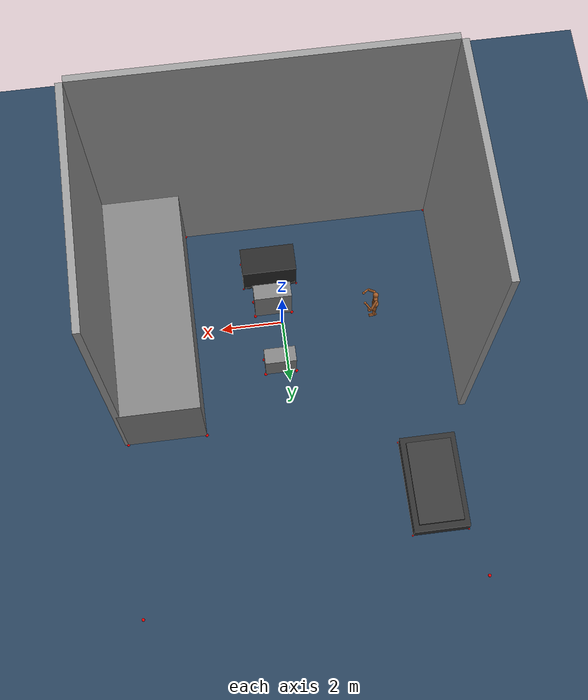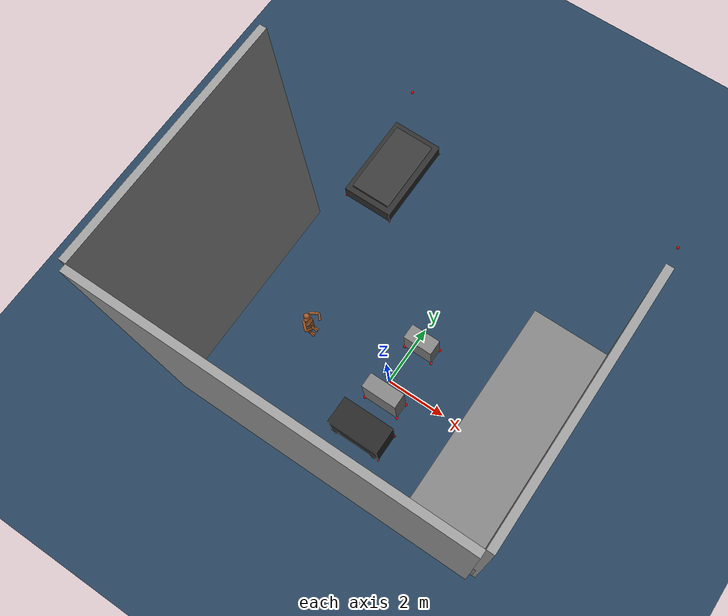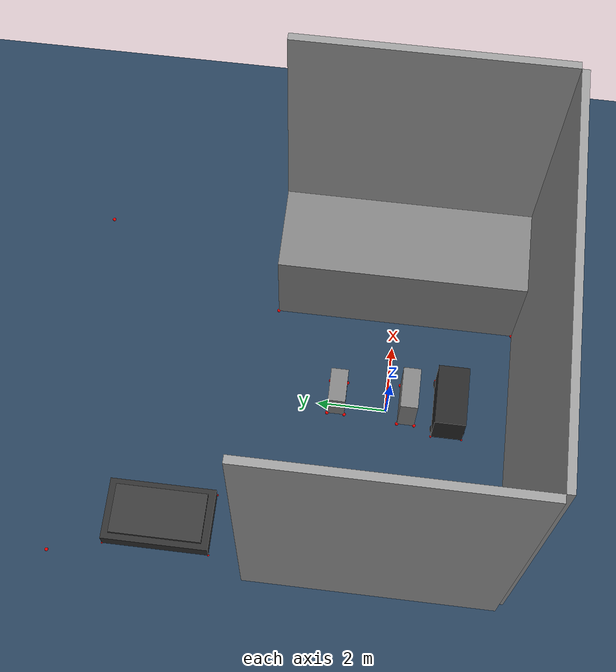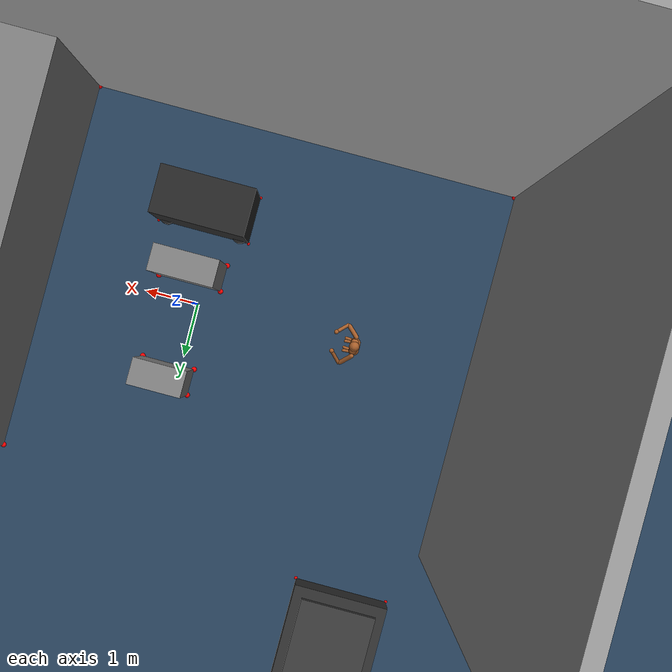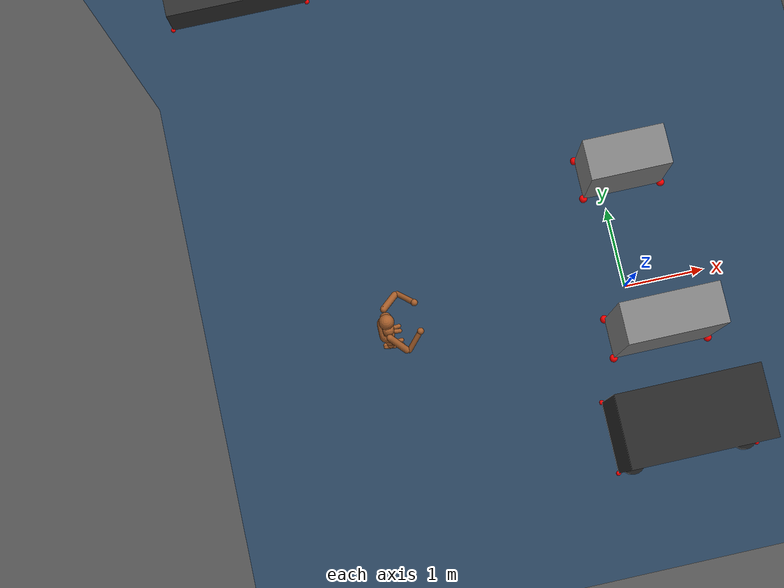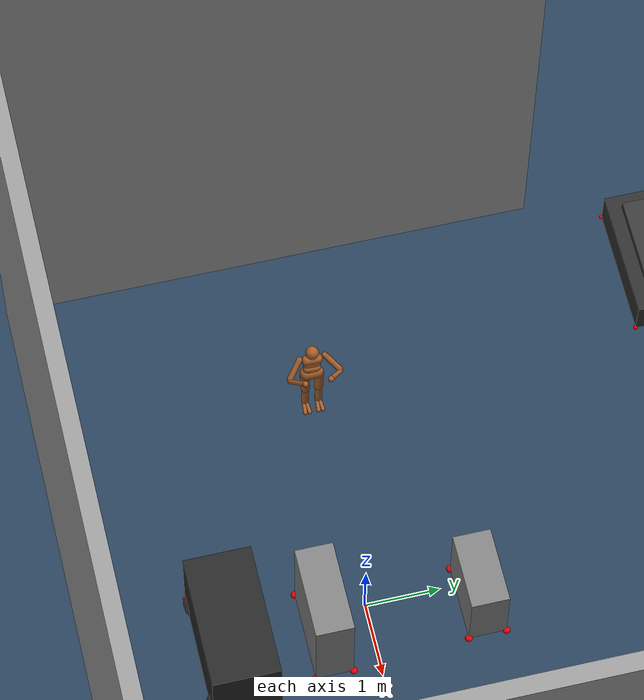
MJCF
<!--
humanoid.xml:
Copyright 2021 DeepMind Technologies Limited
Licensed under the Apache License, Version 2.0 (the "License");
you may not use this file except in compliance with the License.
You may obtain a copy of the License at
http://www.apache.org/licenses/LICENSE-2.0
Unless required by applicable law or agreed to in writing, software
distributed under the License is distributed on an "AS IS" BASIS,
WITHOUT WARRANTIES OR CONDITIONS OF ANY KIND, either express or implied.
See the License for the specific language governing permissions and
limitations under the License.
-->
<mujoco model="workspace_scene">
    <option timestep="0.002" integrator="RK4"/>

    <asset>
        <!-- Grid floor texture (keeping as original) -->
        <texture name="grid" type="2d" builtin="checker"
            rgb1="0.2 0.3 0.4" rgb2="0.1 0.2 0.3"
            width="512" height="512" mark="edge" markrgb="0.8 0.8 0.8"/>
        <!-- Grid floor material (keeping as original) -->
        <material name="grid" texture="grid" texrepeat="40 40"
            rgba="1.0 1.0 1.0 1.0" specular="0.2" shininess="0.5"/>

        <!-- Wall material - Gray -->
        <material name="walls" rgba="0.6 0.6 0.6 1.0" specular="0.3" shininess="0.6"/>

        <!-- Static objects material - Gray -->
        <material name="static_objects" rgba="0.5 0.5 0.5 1.0" specular="0.2" shininess="0.4"/>

        <!-- Mobile Robot materials - Black theme -->
        <material name="mobile_robot_body" rgba="0.15 0.15 0.15 1.0" specular="0.4" shininess="0.8"/>
        <material name="mobile_robot_wheel" rgba="0.1 0.1 0.1 1.0" specular="0.2" shininess="0.3"/>
        <material name="mobile_robot_sensor" rgba="0.2 0.2 0.2 1.0" specular="0.5" shininess="0.9"/>

        <!-- AGV materials - Black theme -->
        <material name="agv_body" rgba="0.18 0.18 0.18 1.0" specular="0.4" shininess="0.8"/>
        <material name="agv_wheel" rgba="0.08 0.08 0.08 1.0" specular="0.2" shininess="0.3"/>
        <material name="agv_cargo" rgba="0.22 0.22 0.22 1.0" specular="0.5" shininess="0.9"/>

        <!-- Human material - Black -->
        <material name="human_body" rgba="0.12 0.12 0.12 1.0" specular="0.1" shininess="0.2"/>
    </asset>

    <worldbody>
        <!-- Lighting -->
        <light directional="true" ambient="0.4 0.4 0.4" diffuse="0.8 0.8 0.8" specular="0.3 0.3 0.3"
            pos="0 0 20" dir="0 0 -1"/>

        <!-- Grid floor (unchanged) -->
        <geom name="floor" type="plane" size="50 50 0.1" material="grid" pos="0 0 0"/>

        <!-- Workspace in center - 10.5 x 10.5 x 7 meters (no roof) -->
        <body name="workspace" pos="0 0 0">
            <!-- Walls - Gray -->
            <geom name="workspace_wall_south" type="box" size="5.25 0.1 5"
                material="walls" pos="0 -3.6 5"/>
            <geom name="workspace_wall_east" type="box" size="0.1 3.5 5"
                material="walls" pos="5.35 0 5"/>
            <geom name="workspace_wall_west" type="box" size="0.1 3.5 5"
                material="walls" pos="-5.35 0 5"/>

            <!-- Static objects - Black -->
            <geom name="workspace_desks" type="box" size="1.25 3.5 1.5"
                material="static_objects" pos="4.1 0 1.5"/>
            <geom name="battery_assembly" type="box" size="0.6 0.25 0.7"
                material="static_objects" pos="0.25 -0.6 0.7"/>
            <geom name="tool_station" type="box" size="0.5 0.25 0.5"
                material="static_objects" pos="0.25 1.45 0.5"/>

            <site name="battery_c0" pos="-0.35 -0.85 0.0" size="0.05" rgba="1 0 0 1"/>
            <site name="battery_c1" pos="-0.35 -0.35 0.0" size="0.05" rgba="1 0 0 1"/>
            <site name="battery_c2" pos=" 0.85 -0.35 0.0" size="0.05" rgba="1 0 0 1"/>
            <site name="battery_c3" pos=" 0.85 -0.85 0.0" size="0.05" rgba="1 0 0 1"/>

            <site name="tool_c0" pos="-0.25  1.2 0.0" size="0.05" rgba="1 0 0 1"/>
            <site name="tool_c1" pos="-0.25  1.7 0.0" size="0.05" rgba="1 0 0 1"/>
            <site name="tool_c2" pos=" 0.75  1.7 0.0" size="0.05" rgba="1 0 0 1"/>
            <site name="tool_c3" pos=" 0.75  1.2 0.0" size="0.05" rgba="1 0 0 1"/>

            <site name="outline_c0" pos="5.35  3.5 0.0" size="0.05" rgba="1 0 0 1"/>
            <site name="outline_c1" pos="2.85  3.5 0.0" size="0.05" rgba="1 0 0 1"/>
            <site name="outline_c2" pos="2.85 -3.5 0.0" size="0.05" rgba="1 0 0 1"/>
            <site name="outline_c4" pos="-5.25 -3.5 0" size="0.05" rgba="1 0 0 1"/>
            <site name="outline_c5" pos="-5.25  9 0" size="0.05" rgba="1 0 0 1"/>
            <site name="outline_c6" pos="5.35  9 0.0" size="0.05" rgba="1 0 0 1"/>

        </body>

        <body name="mobile_robot" pos="0.25 -1.8 0.6">
            <freejoint name="robot_base_joint"/>
            <geom name="robot_chassis" type="box" size="0.875 0.4455 0.6"
                material="mobile_robot_body" mass="50.0"/>
            <body name="front_left_wheel" pos="0.7 0.35 -0.45">
                <geom name="front_left_wheel_geom" type="cylinder" size="0.15 0.05"
                    material="mobile_robot_wheel" mass="3.0" friction="1.2 0.1 0.01"/>
            </body>
            <body name="front_right_wheel" pos="0.7 -0.35 -0.45">
                <geom name="front_right_wheel_geom" type="cylinder" size="0.15 0.05"
                    material="mobile_robot_wheel" mass="3.0" friction="1.2 0.1 0.01"/>
            </body>
            <body name="rear_left_wheel" pos="-0.7 0.35 -0.45">
                <geom name="rear_left_wheel_geom" type="cylinder" size="0.15 0.05"
                    material="mobile_robot_wheel" mass="3.0" friction="1.2 0.1 0.01"/>
            </body>
            <body name="rear_right_wheel" pos="-0.7 -0.35 -0.45">
                <geom name="rear_right_wheel_geom" type="cylinder" size="0.15 0.05"
                    material="mobile_robot_wheel" mass="3.0" friction="1.2 0.1 0.01"/>
            </body>
            <site name="robot_center" pos="0 0 0" size="0.02" rgba="1 1 0 1"/>

            <site name="robot_c0" pos="-0.875 -0.4455 -0.6" size="0.03" rgba="1 0 0 1"/>
            <site name="robot_c1" pos="-0.875  0.4455 -0.6" size="0.03" rgba="1 0 0 1"/>
            <site name="robot_c2" pos=" 0.875  0.4455 -0.6" size="0.03" rgba="1 0 0 1"/>
            <site name="robot_c3" pos=" 0.875 -0.4455 -0.6" size="0.03" rgba="1 0 0 1"/>

        </body>

        <body name="agv" pos="-4 6 0.25">
            <freejoint name="agv_base_joint"/>
            <geom name="agv_chassis" type="box" size="0.875 1.5 0.25"
                material="agv_body" mass="80.0"/>
            <body name="agv_front_left_wheel" pos="0.7 1.2 -0.15">
                <geom name="agv_front_left_wheel_geom" type="cylinder" size="0.1 0.04"
                    material="agv_wheel" mass="2.5" friction="1.0 0.1 0.01"/>
            </body>
            <body name="agv_front_right_wheel" pos="0.7 -1.2 -0.15">
                <geom name="agv_front_right_wheel_geom" type="cylinder" size="0.1 0.04"
                    material="agv_wheel" mass="2.5" friction="1.0 0.1 0.01"/>
            </body>
            <body name="agv_rear_left_wheel" pos="-0.7 1.2 -0.15">
                <geom name="agv_rear_left_wheel_geom" type="cylinder" size="0.1 0.04"
                    material="agv_wheel" mass="2.5" friction="1.0 0.1 0.01"/>
            </body>
            <body name="agv_rear_right_wheel" pos="-0.7 -1.2 -0.15">
                <geom name="agv_rear_right_wheel_geom" type="cylinder" size="0.1 0.04"
                    material="agv_wheel" mass="2.5" friction="1.0 0.1 0.01"/>
            </body>
            <geom name="agv_cargo_area" type="box" size="0.7 1.3 0.05"
                material="agv_cargo" pos="0 0 0.3"/>

            <site name="agv_c0" pos="-0.875 -1.5 -0.25" size="0.03" rgba="1 0 0 1"/>
            <site name="agv_c1" pos="-0.875  1.5 -0.25" size="0.03" rgba="1 0 0 1"/>
            <site name="agv_c2" pos=" 0.875  1.5 -0.25" size="0.03" rgba="1 0 0 1"/>
            <site name="agv_c3" pos=" 0.875 -1.5 -0.25" size="0.03" rgba="1 0 0 1"/>

        </body>

    </worldbody>

    <include file="../humanoid/humanoid.xml" />

    <visual>

        <headlight ambient="0.3 0.3 0.3" diffuse="0.7 0.7 0.7"/>
        <rgba haze="0.15 0.25 0.35 1"/>
        <global azimuth="120" elevation="-20"/>
    </visual>
</mujoco>

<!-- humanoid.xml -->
<mujocoinclude>

  <visual>
    <map force="0.1" zfar="30"/>
    <rgba haze="0.15 0.25 0.35 1"/>
    <global offwidth="2560" offheight="1440" elevation="-20" azimuth="120"/>
  </visual>

  <statistic center="0 0 0.7"/>

  <asset>
    <texture type="skybox" builtin="gradient" rgb1=".3 .5 .7" rgb2="0 0 0" width="32" height="512"/>
    <texture name="body" type="cube" builtin="flat" mark="cross" width="128" height="128" rgb1="0.8 0.6 0.4" rgb2="0.8 0.6 0.4" markrgb="1 1 1"/>
    <material name="body" texture="body" texuniform="true" rgba="0.8 0.6 .4 1"/>
  </asset>

  <default>
    <motor ctrlrange="-1 1" ctrllimited="true"/>
    <default class="body">

      <!-- geoms -->
      <geom type="capsule" condim="1" friction=".7" solimp=".9 .99 .003" solref=".015 1" material="body" group="1"/>
      <default class="thigh">
        <geom size=".06"/>
      </default>
      <default class="shin">
        <geom fromto="0 0 0 0 0 -.3"  size=".049"/>
      </default>
      <default class="foot">
        <geom size=".027"/>
        <default class="foot1">
          <geom fromto="-.07 -.01 0 .14 -.03 0"/>
        </default>
        <default class="foot2">
          <geom fromto="-.07 .01 0 .14  .03 0"/>
        </default>
      </default>
      <default class="arm_upper">
        <geom size=".04"/>
      </default>
      <default class="arm_lower">
        <geom size=".031"/>
      </default>
      <default class="hand">
        <geom type="sphere" size=".04"/>
      </default>

      <!-- joints -->
      <joint type="hinge" damping=".2" stiffness="1" armature=".01" limited="true" solimplimit="0 .99 .01"/>
      <default class="joint_big">
        <joint damping="5" stiffness="10"/>
        <default class="hip_x">
          <joint range="-30 10"/>
        </default>
        <default class="hip_z">
          <joint range="-60 35"/>
        </default>
        <default class="hip_y">
          <joint axis="0 1 0" range="-150 20"/>
        </default>
        <default class="joint_big_stiff">
          <joint stiffness="20"/>
        </default>
      </default>
      <default class="knee">
        <joint pos="0 0 .02" axis="0 -1 0" range="-160 2"/>
      </default>
      <default class="ankle">
        <joint range="-50 50"/>
        <default class="ankle_y">
          <joint pos="0 0 .08" axis="0 1 0" stiffness="6"/>
        </default>
        <default class="ankle_x">
          <joint pos="0 0 .04" stiffness="3"/>
        </default>
      </default>
      <default class="shoulder">
        <joint range="-85 60"/>
      </default>
      <default class="elbow">
        <joint range="-100 50" stiffness="0"/>
      </default>
    </default>
  </default>

  <worldbody>

    <body name="torso" pos="-3 0 1.282" childclass="body">
      <camera name="back" pos="-3 0 1" xyaxes="0 -1 0 1 0 2" mode="trackcom"/>
      <camera name="side" pos="0 -3 1" xyaxes="1 0 0 0 1 2" mode="trackcom"/>
      <freejoint name="root"/>
      <geom name="torso" fromto="0 -.07 0 0 .07 0" size=".07"/>
      <geom name="waist_upper" fromto="-.01 -.06 -.12 -.01 .06 -.12" size=".06"/>
      <body name="head" pos="0 0 .19">
        <geom name="head" type="sphere" size=".09"/>
        <camera name="egocentric" pos=".09 0 0" xyaxes="0 -1 0 .1 0 1" fovy="80"/>
      </body>
      <body name="waist_lower" pos="-.01 0 -.26">
        <geom name="waist_lower" fromto="0 -.06 0 0 .06 0" size=".06"/>
        <joint name="abdomen_z" pos="0 0 .065" axis="0 0 1" range="-45 45" class="joint_big_stiff"/>
        <joint name="abdomen_y" pos="0 0 .065" axis="0 1 0" range="-75 30" class="joint_big"/>
        <body name="pelvis" pos="0 0 -.165">
          <joint name="abdomen_x" pos="0 0 .1" axis="1 0 0" range="-35 35" class="joint_big"/>
          <geom name="butt" fromto="-.02 -.07 0 -.02 .07 0" size=".09"/>
          <body name="thigh_right" pos="0 -.1 -.04">
            <joint name="hip_x_right" axis="1 0 0" class="hip_x"/>
            <joint name="hip_z_right" axis="0 0 1" class="hip_z"/>
            <joint name="hip_y_right" class="hip_y"/>
            <geom name="thigh_right" fromto="0 0 0 0 .01 -.34" class="thigh"/>
            <body name="shin_right" pos="0 .01 -.4">
              <joint name="knee_right" class="knee"/>
              <geom name="shin_right" class="shin"/>
              <body name="foot_right" pos="0 0 -.39">
                <joint name="ankle_y_right" class="ankle_y"/>
                <joint name="ankle_x_right" class="ankle_x" axis="1 0 .5"/>
                <geom name="foot1_right" class="foot1"/>
                <geom name="foot2_right" class="foot2"/>
              </body>
            </body>
          </body>
          <body name="thigh_left" pos="0 .1 -.04">
            <joint name="hip_x_left" axis="-1 0 0" class="hip_x"/>
            <joint name="hip_z_left" axis="0 0 -1" class="hip_z"/>
            <joint name="hip_y_left" class="hip_y"/>
            <geom name="thigh_left" fromto="0 0 0 0 -.01 -.34" class="thigh"/>
            <body name="shin_left" pos="0 -.01 -.4">
              <joint name="knee_left" class="knee"/>
              <geom name="shin_left" fromto="0 0 0 0 0 -.3" class="shin"/>
              <body name="foot_left" pos="0 0 -.39">
                <joint name="ankle_y_left" class="ankle_y"/>
                <joint name="ankle_x_left" class="ankle_x" axis="-1 0 -.5"/>
                <geom name="foot1_left" class="foot1"/>
                <geom name="foot2_left" class="foot2"/>
              </body>
            </body>
          </body>
        </body>
      </body>
      <body name="upper_arm_right" pos="0 -.17 .06">
        <joint name="shoulder1_right" axis="2 1 1"  class="shoulder"/>
        <joint name="shoulder2_right" axis="0 -1 1" class="shoulder"/>
        <geom name="upper_arm_right" fromto="0 0 0 .16 -.16 -.16" class="arm_upper"/>
        <body name="lower_arm_right" pos=".18 -.18 -.18">
          <joint name="elbow_right" axis="0 -1 1" class="elbow"/>
          <geom name="lower_arm_right" fromto=".01 .01 .01 .17 .17 .17" class="arm_lower"/>
          <body name="hand_right" pos=".18 .18 .18">
            <geom name="hand_right" zaxis="1 1 1" class="hand"/>
          </body>
        </body>
      </body>
      <body name="upper_arm_left" pos="0 .17 .06">
        <joint name="shoulder1_left" axis="-2 1 -1" class="shoulder"/>
        <joint name="shoulder2_left" axis="0 -1 -1"  class="shoulder"/>
        <geom name="upper_arm_left" fromto="0 0 0 .16 .16 -.16" class="arm_upper"/>
        <body name="lower_arm_left" pos=".18 .18 -.18">
          <joint name="elbow_left" axis="0 -1 -1" class="elbow"/>
          <geom name="lower_arm_left" fromto=".01 -.01 .01 .17 -.17 .17" class="arm_lower"/>
          <body name="hand_left" pos=".18 -.18 .18">
            <geom name="hand_left" zaxis="1 -1 1" class="hand"/>
          </body>
        </body>
      </body>
    </body>
  </worldbody>

  <contact>
    <exclude body1="waist_lower" body2="thigh_right"/>
    <exclude body1="waist_lower" body2="thigh_left"/>
  </contact>

  <tendon>
    <fixed name="hamstring_right" limited="true" range="-0.3 2">
      <joint joint="hip_y_right" coef=".5"/>
      <joint joint="knee_right" coef="-.5"/>
    </fixed>
    <fixed name="hamstring_left" limited="true" range="-0.3 2">
      <joint joint="hip_y_left" coef=".5"/>
      <joint joint="knee_left" coef="-.5"/>
    </fixed>
  </tendon>

  <actuator>
    <motor name="abdomen_z"       gear="40"  joint="abdomen_z"/>
    <motor name="abdomen_y"       gear="40"  joint="abdomen_y"/>
    <motor name="abdomen_x"       gear="40"  joint="abdomen_x"/>
    <motor name="hip_x_right"     gear="40"  joint="hip_x_right"/>
    <motor name="hip_z_right"     gear="40"  joint="hip_z_right"/>
    <motor name="hip_y_right"     gear="120" joint="hip_y_right"/>
    <motor name="knee_right"      gear="80"  joint="knee_right"/>
    <motor name="ankle_y_right"   gear="20"  joint="ankle_y_right"/>
    <motor name="ankle_x_right"   gear="20"  joint="ankle_x_right"/>
    <motor name="hip_x_left"      gear="40"  joint="hip_x_left"/>
    <motor name="hip_z_left"      gear="40"  joint="hip_z_left"/>
    <motor name="hip_y_left"      gear="120" joint="hip_y_left"/>
    <motor name="knee_left"       gear="80"  joint="knee_left"/>
    <motor name="ankle_y_left"    gear="20"  joint="ankle_y_left"/>
    <motor name="ankle_x_left"    gear="20"  joint="ankle_x_left"/>
    <motor name="shoulder1_right" gear="20"  joint="shoulder1_right"/>
    <motor name="shoulder2_right" gear="20"  joint="shoulder2_right"/>
    <motor name="elbow_right"     gear="40"  joint="elbow_right"/>
    <motor name="shoulder1_left"  gear="20"  joint="shoulder1_left"/>
    <motor name="shoulder2_left"  gear="20"  joint="shoulder2_left"/>
    <motor name="elbow_left"      gear="40"  joint="elbow_left"/>
  </actuator>

</mujocoinclude>
